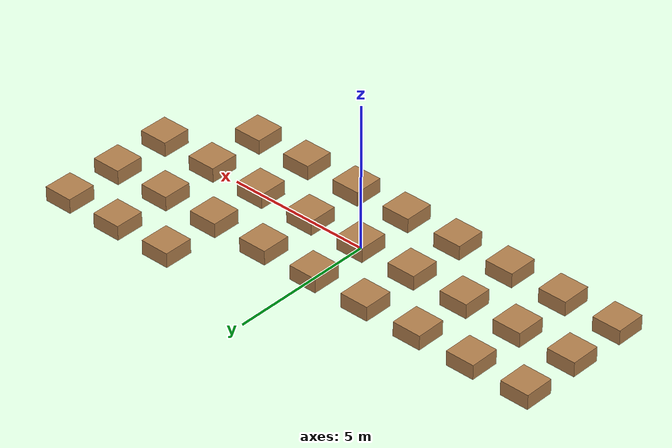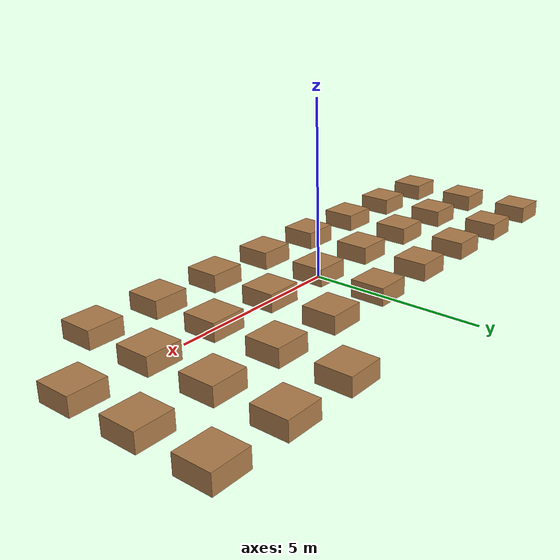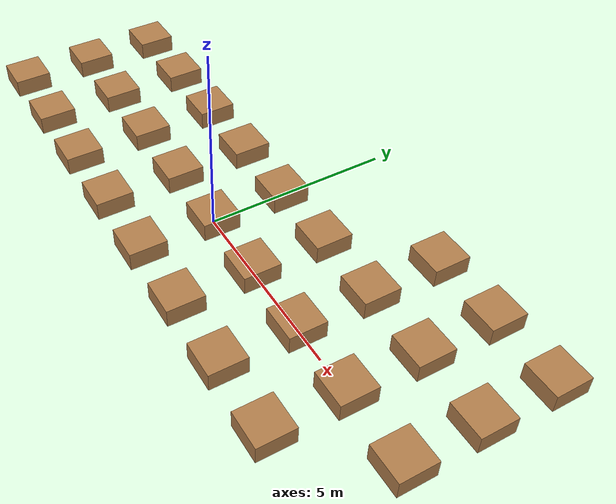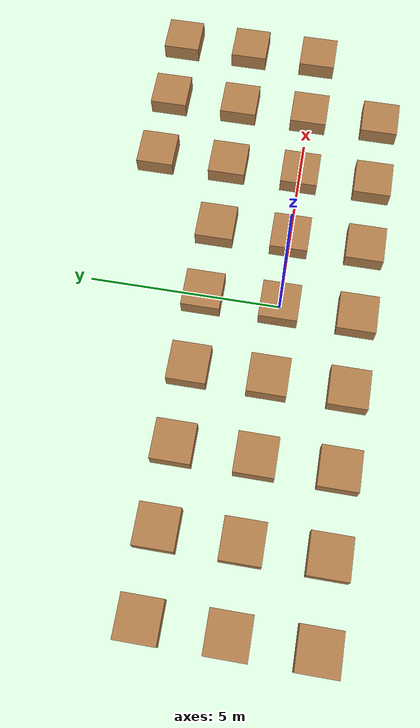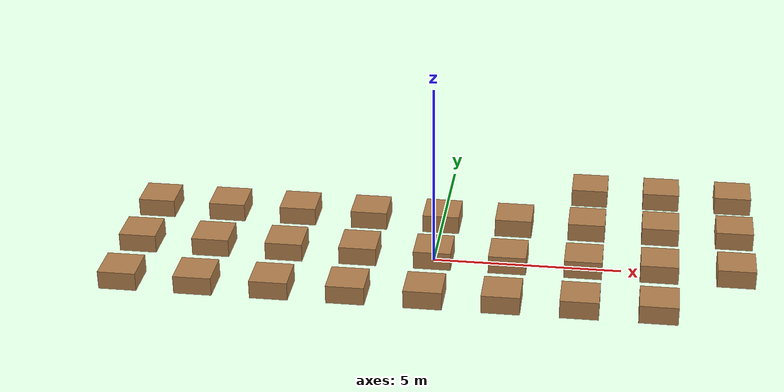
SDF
<sdf version="1.5">
 <model name="clobot_test_map">
  <static>1</static>
  <link name="Box25">
   <collision name="Box25_Collision">
    <pose>4 4 0.25 0 0 0</pose>
    <geometry><box><size>1 1 0.5</size></box></geometry>
    <surface>
     <friction>
      <ode><mu>1</mu><mu2>1</mu2><fdir1>0 0 0</fdir1><slip1>0</slip1><slip2>0</slip2></ode>
      <torsional>
       <coefficient>1</coefficient>
       <patch_radius>0</patch_radius>
       <surface_radius>0</surface_radius>
       <use_patch_radius>1</use_patch_radius>
       <ode><slip>0</slip></ode>
      </torsional>
     </friction>
     <bounce><restitution_coefficient>0</restitution_coefficient><threshold>1e+06</threshold></bounce>
     <contact>
      <collide_without_contact>0</collide_without_contact>
      <collide_without_contact_bitmask>1</collide_without_contact_bitmask>
      <collide_bitmask>1</collide_bitmask>
      <ode>
       <soft_cfm>0</soft_cfm>
       <soft_erp>0.2</soft_erp>
       <kp>1e+13</kp>
       <kd>1</kd>
       <max_vel>0.01</max_vel>
       <min_depth>0</min_depth>
      </ode>
      <bullet>
       <split_impulse>1</split_impulse>
       <split_impulse_penetration_threshold>-0.01</split_impulse_penetration_threshold>
       <soft_cfm>0</soft_cfm>
       <soft_erp>0.2</soft_erp>
       <kp>1e+13</kp>
       <kd>1</kd>
      </bullet>
     </contact>
    </surface>
   </collision>
   <visual name="Box25_Visual">
    <pose>4 4 0.25 0 0 0</pose>
    <geometry><box><size>1 1 0.5</size></box></geometry>
    <material><script><name>Gazebo/WoodFloor</name></script></material>
   </visual>
  </link>
  <link name="Box26">
   <collision name="Box26_Collision">
    <pose>6 4 0.25 0 0 0</pose>
    <geometry><box><size>1 1 0.5</size></box></geometry>
    <surface>
     <friction>
      <ode><mu>1</mu><mu2>1</mu2><fdir1>0 0 0</fdir1><slip1>0</slip1><slip2>0</slip2></ode>
      <torsional>
       <coefficient>1</coefficient>
       <patch_radius>0</patch_radius>
       <surface_radius>0</surface_radius>
       <use_patch_radius>1</use_patch_radius>
       <ode><slip>0</slip></ode>
      </torsional>
     </friction>
     <bounce><restitution_coefficient>0</restitution_coefficient><threshold>1e+06</threshold></bounce>
     <contact>
      <collide_without_contact>0</collide_without_contact>
      <collide_without_contact_bitmask>1</collide_without_contact_bitmask>
      <collide_bitmask>1</collide_bitmask>
      <ode>
       <soft_cfm>0</soft_cfm>
       <soft_erp>0.2</soft_erp>
       <kp>1e+13</kp>
       <kd>1</kd>
       <max_vel>0.01</max_vel>
       <min_depth>0</min_depth>
      </ode>
      <bullet>
       <split_impulse>1</split_impulse>
       <split_impulse_penetration_threshold>-0.01</split_impulse_penetration_threshold>
       <soft_cfm>0</soft_cfm>
       <soft_erp>0.2</soft_erp>
       <kp>1e+13</kp>
       <kd>1</kd>
      </bullet>
     </contact>
    </surface>
   </collision>
   <visual name="Box26_Visual">
    <pose>6 4 0.25 0 0 0</pose>
    <geometry><box><size>1 1 0.5</size></box></geometry>
    <material><script><name>Gazebo/WoodFloor</name></script></material>
   </visual>
  </link>
  <link name="Box27">
   <collision name="Box27_Collision">
    <pose>8 4 0.25 0 0 0</pose>
    <geometry><box><size>1 1 0.5</size></box></geometry>
    <surface>
     <friction>
      <ode><mu>1</mu><mu2>1</mu2><fdir1>0 0 0</fdir1><slip1>0</slip1><slip2>0</slip2></ode>
      <torsional>
       <coefficient>1</coefficient>
       <patch_radius>0</patch_radius>
       <surface_radius>0</surface_radius>
       <use_patch_radius>1</use_patch_radius>
       <ode><slip>0</slip></ode>
      </torsional>
     </friction>
     <bounce><restitution_coefficient>0</restitution_coefficient><threshold>1e+06</threshold></bounce>
     <contact>
      <collide_without_contact>0</collide_without_contact>
      <collide_without_contact_bitmask>1</collide_without_contact_bitmask>
      <collide_bitmask>1</collide_bitmask>
      <ode>
       <soft_cfm>0</soft_cfm>
       <soft_erp>0.2</soft_erp>
       <kp>1e+13</kp>
       <kd>1</kd>
       <max_vel>0.01</max_vel>
       <min_depth>0</min_depth>
      </ode>
      <bullet>
       <split_impulse>1</split_impulse>
       <split_impulse_penetration_threshold>-0.01</split_impulse_penetration_threshold>
       <soft_cfm>0</soft_cfm>
       <soft_erp>0.2</soft_erp>
       <kp>1e+13</kp>
       <kd>1</kd>
      </bullet>
     </contact>
    </surface>
   </collision>
   <visual name="Box27_Visual">
    <pose>8 4 0.25 0 0 0</pose>
    <geometry><box><size>1 1 0.5</size></box></geometry>
    <material><script><name>Gazebo/WoodFloor</name></script></material>
   </visual>
  </link>
  <link name="Box28">
   <collision name="Box28_Collision">
    <pose>-8 2 0.25 0 0 0</pose>
    <geometry><box><size>1 1 0.5</size></box></geometry>
    <surface>
     <friction>
      <ode><mu>1</mu><mu2>1</mu2><fdir1>0 0 0</fdir1><slip1>0</slip1><slip2>0</slip2></ode>
      <torsional>
       <coefficient>1</coefficient>
       <patch_radius>0</patch_radius>
       <surface_radius>0</surface_radius>
       <use_patch_radius>1</use_patch_radius>
       <ode><slip>0</slip></ode>
      </torsional>
     </friction>
     <bounce><restitution_coefficient>0</restitution_coefficient><threshold>1e+06</threshold></bounce>
     <contact>
      <collide_without_contact>0</collide_without_contact>
      <collide_without_contact_bitmask>1</collide_without_contact_bitmask>
      <collide_bitmask>1</collide_bitmask>
      <ode>
       <soft_cfm>0</soft_cfm>
       <soft_erp>0.2</soft_erp>
       <kp>1e+13</kp>
       <kd>1</kd>
       <max_vel>0.01</max_vel>
       <min_depth>0</min_depth>
      </ode>
      <bullet>
       <split_impulse>1</split_impulse>
       <split_impulse_penetration_threshold>-0.01</split_impulse_penetration_threshold>
       <soft_cfm>0</soft_cfm>
       <soft_erp>0.2</soft_erp>
       <kp>1e+13</kp>
       <kd>1</kd>
      </bullet>
     </contact>
    </surface>
   </collision>
   <visual name="Box28_Visual">
    <pose>-8 2 0.25 0 0 0</pose>
    <geometry><box><size>1 1 0.5</size></box></geometry>
    <material><script><name>Gazebo/WoodFloor</name></script></material>
   </visual>
  </link>
  <link name="Box29">
   <collision name="Box29_Collision">
    <pose>-6 2 0.25 0 0 0</pose>
    <geometry><box><size>1 1 0.5</size></box></geometry>
    <surface>
     <friction>
      <ode><mu>1</mu><mu2>1</mu2><fdir1>0 0 0</fdir1><slip1>0</slip1><slip2>0</slip2></ode>
      <torsional>
       <coefficient>1</coefficient>
       <patch_radius>0</patch_radius>
       <surface_radius>0</surface_radius>
       <use_patch_radius>1</use_patch_radius>
       <ode><slip>0</slip></ode>
      </torsional>
     </friction>
     <bounce><restitution_coefficient>0</restitution_coefficient><threshold>1e+06</threshold></bounce>
     <contact>
      <collide_without_contact>0</collide_without_contact>
      <collide_without_contact_bitmask>1</collide_without_contact_bitmask>
      <collide_bitmask>1</collide_bitmask>
      <ode>
       <soft_cfm>0</soft_cfm>
       <soft_erp>0.2</soft_erp>
       <kp>1e+13</kp>
       <kd>1</kd>
       <max_vel>0.01</max_vel>
       <min_depth>0</min_depth>
      </ode>
      <bullet>
       <split_impulse>1</split_impulse>
       <split_impulse_penetration_threshold>-0.01</split_impulse_penetration_threshold>
       <soft_cfm>0</soft_cfm>
       <soft_erp>0.2</soft_erp>
       <kp>1e+13</kp>
       <kd>1</kd>
      </bullet>
     </contact>
    </surface>
   </collision>
   <visual name="Box29_Visual">
    <pose>-6 2 0.25 0 0 0</pose>
    <geometry><box><size>1 1 0.5</size></box></geometry>
    <material><script><name>Gazebo/WoodFloor</name></script></material>
   </visual>
  </link>
  <link name="Box30">
   <collision name="Box30_Collision">
    <pose>-4 2 0.25 0 0 0</pose>
    <geometry><box><size>1 1 0.5</size></box></geometry>
    <surface>
     <friction>
      <ode><mu>1</mu><mu2>1</mu2><fdir1>0 0 0</fdir1><slip1>0</slip1><slip2>0</slip2></ode>
      <torsional>
       <coefficient>1</coefficient>
       <patch_radius>0</patch_radius>
       <surface_radius>0</surface_radius>
       <use_patch_radius>1</use_patch_radius>
       <ode><slip>0</slip></ode>
      </torsional>
     </friction>
     <bounce><restitution_coefficient>0</restitution_coefficient><threshold>1e+06</threshold></bounce>
     <contact>
      <collide_without_contact>0</collide_without_contact>
      <collide_without_contact_bitmask>1</collide_without_contact_bitmask>
      <collide_bitmask>1</collide_bitmask>
      <ode>
       <soft_cfm>0</soft_cfm>
       <soft_erp>0.2</soft_erp>
       <kp>1e+13</kp>
       <kd>1</kd>
       <max_vel>0.01</max_vel>
       <min_depth>0</min_depth>
      </ode>
      <bullet>
       <split_impulse>1</split_impulse>
       <split_impulse_penetration_threshold>-0.01</split_impulse_penetration_threshold>
       <soft_cfm>0</soft_cfm>
       <soft_erp>0.2</soft_erp>
       <kp>1e+13</kp>
       <kd>1</kd>
      </bullet>
     </contact>
    </surface>
   </collision>
   <visual name="Box30_Visual">
    <pose>-4 2 0.25 0 0 0</pose>
    <geometry><box><size>1 1 0.5</size></box></geometry>
    <material><script><name>Gazebo/WoodFloor</name></script></material>
   </visual>
  </link>
  <link name="Box31">
   <collision name="Box31_Collision">
    <pose>-2 2 0.25 0 0 0</pose>
    <geometry><box><size>1 1 0.5</size></box></geometry>
    <surface>
     <friction>
      <ode><mu>1</mu><mu2>1</mu2><fdir1>0 0 0</fdir1><slip1>0</slip1><slip2>0</slip2></ode>
      <torsional>
       <coefficient>1</coefficient>
       <patch_radius>0</patch_radius>
       <surface_radius>0</surface_radius>
       <use_patch_radius>1</use_patch_radius>
       <ode><slip>0</slip></ode>
      </torsional>
     </friction>
     <bounce><restitution_coefficient>0</restitution_coefficient><threshold>1e+06</threshold></bounce>
     <contact>
      <collide_without_contact>0</collide_without_contact>
      <collide_without_contact_bitmask>1</collide_without_contact_bitmask>
      <collide_bitmask>1</collide_bitmask>
      <ode>
       <soft_cfm>0</soft_cfm>
       <soft_erp>0.2</soft_erp>
       <kp>1e+13</kp>
       <kd>1</kd>
       <max_vel>0.01</max_vel>
       <min_depth>0</min_depth>
      </ode>
      <bullet>
       <split_impulse>1</split_impulse>
       <split_impulse_penetration_threshold>-0.01</split_impulse_penetration_threshold>
       <soft_cfm>0</soft_cfm>
       <soft_erp>0.2</soft_erp>
       <kp>1e+13</kp>
       <kd>1</kd>
      </bullet>
     </contact>
    </surface>
   </collision>
   <visual name="Box31_Visual">
    <pose>-2 2 0.25 0 0 0</pose>
    <geometry><box><size>1 1 0.5</size></box></geometry>
    <material><script><name>Gazebo/WoodFloor</name></script></material>
   </visual>
  </link>
  <link name="Box32">
   <collision name="Box32_Collision">
    <pose>0 2 0.25 0 0 0</pose>
    <geometry><box><size>1 1 0.5</size></box></geometry>
    <surface>
     <friction>
      <ode><mu>1</mu><mu2>1</mu2><fdir1>0 0 0</fdir1><slip1>0</slip1><slip2>0</slip2></ode>
      <torsional>
       <coefficient>1</coefficient>
       <patch_radius>0</patch_radius>
       <surface_radius>0</surface_radius>
       <use_patch_radius>1</use_patch_radius>
       <ode><slip>0</slip></ode>
      </torsional>
     </friction>
     <bounce><restitution_coefficient>0</restitution_coefficient><threshold>1e+06</threshold></bounce>
     <contact>
      <collide_without_contact>0</collide_without_contact>
      <collide_without_contact_bitmask>1</collide_without_contact_bitmask>
      <collide_bitmask>1</collide_bitmask>
      <ode>
       <soft_cfm>0</soft_cfm>
       <soft_erp>0.2</soft_erp>
       <kp>1e+13</kp>
       <kd>1</kd>
       <max_vel>0.01</max_vel>
       <min_depth>0</min_depth>
      </ode>
      <bullet>
       <split_impulse>1</split_impulse>
       <split_impulse_penetration_threshold>-0.01</split_impulse_penetration_threshold>
       <soft_cfm>0</soft_cfm>
       <soft_erp>0.2</soft_erp>
       <kp>1e+13</kp>
       <kd>1</kd>
      </bullet>
     </contact>
    </surface>
   </collision>
   <visual name="Box32_Visual">
    <pose>0 2 0.25 0 0 0</pose>
    <geometry><box><size>1 1 0.5</size></box></geometry>
    <material><script><name>Gazebo/WoodFloor</name></script></material>
   </visual>
  </link>
  <link name="Box33">
   <collision name="Box33_Collision">
    <pose>2 2 0.25 0 0 0</pose>
    <geometry><box><size>1 1 0.5</size></box></geometry>
    <surface>
     <friction>
      <ode><mu>1</mu><mu2>1</mu2><fdir1>0 0 0</fdir1><slip1>0</slip1><slip2>0</slip2></ode>
      <torsional>
       <coefficient>1</coefficient>
       <patch_radius>0</patch_radius>
       <surface_radius>0</surface_radius>
       <use_patch_radius>1</use_patch_radius>
       <ode><slip>0</slip></ode>
      </torsional>
     </friction>
     <bounce><restitution_coefficient>0</restitution_coefficient><threshold>1e+06</threshold></bounce>
     <contact>
      <collide_without_contact>0</collide_without_contact>
      <collide_without_contact_bitmask>1</collide_without_contact_bitmask>
      <collide_bitmask>1</collide_bitmask>
      <ode>
       <soft_cfm>0</soft_cfm>
       <soft_erp>0.2</soft_erp>
       <kp>1e+13</kp>
       <kd>1</kd>
       <max_vel>0.01</max_vel>
       <min_depth>0</min_depth>
      </ode>
      <bullet>
       <split_impulse>1</split_impulse>
       <split_impulse_penetration_threshold>-0.01</split_impulse_penetration_threshold>
       <soft_cfm>0</soft_cfm>
       <soft_erp>0.2</soft_erp>
       <kp>1e+13</kp>
       <kd>1</kd>
      </bullet>
     </contact>
    </surface>
   </collision>
   <visual name="Box33_Visual">
    <pose>2 2 0.25 0 0 0</pose>
    <geometry><box><size>1 1 0.5</size></box></geometry>
    <material><script><name>Gazebo/WoodFloor</name></script></material>
   </visual>
  </link>
  <link name="Box34">
   <collision name="Box34_Collision">
    <pose>4 2 0.25 0 0 0</pose>
    <geometry><box><size>1 1 0.5</size></box></geometry>
    <surface>
     <friction>
      <ode><mu>1</mu><mu2>1</mu2><fdir1>0 0 0</fdir1><slip1>0</slip1><slip2>0</slip2></ode>
      <torsional>
       <coefficient>1</coefficient>
       <patch_radius>0</patch_radius>
       <surface_radius>0</surface_radius>
       <use_patch_radius>1</use_patch_radius>
       <ode><slip>0</slip></ode>
      </torsional>
     </friction>
     <bounce><restitution_coefficient>0</restitution_coefficient><threshold>1e+06</threshold></bounce>
     <contact>
      <collide_without_contact>0</collide_without_contact>
      <collide_without_contact_bitmask>1</collide_without_contact_bitmask>
      <collide_bitmask>1</collide_bitmask>
      <ode>
       <soft_cfm>0</soft_cfm>
       <soft_erp>0.2</soft_erp>
       <kp>1e+13</kp>
       <kd>1</kd>
       <max_vel>0.01</max_vel>
       <min_depth>0</min_depth>
      </ode>
      <bullet>
       <split_impulse>1</split_impulse>
       <split_impulse_penetration_threshold>-0.01</split_impulse_penetration_threshold>
       <soft_cfm>0</soft_cfm>
       <soft_erp>0.2</soft_erp>
       <kp>1e+13</kp>
       <kd>1</kd>
      </bullet>
     </contact>
    </surface>
   </collision>
   <visual name="Box34_Visual">
    <pose>4 2 0.25 0 0 0</pose>
    <geometry><box><size>1 1 0.5</size></box></geometry>
    <material><script><name>Gazebo/WoodFloor</name></script></material>
   </visual>
  </link>
  <link name="Box35">
   <collision name="Box35_Collision">
    <pose>6 2 0.25 0 0 0</pose>
    <geometry><box><size>1 1 0.5</size></box></geometry>
    <surface>
     <friction>
      <ode><mu>1</mu><mu2>1</mu2><fdir1>0 0 0</fdir1><slip1>0</slip1><slip2>0</slip2></ode>
      <torsional>
       <coefficient>1</coefficient>
       <patch_radius>0</patch_radius>
       <surface_radius>0</surface_radius>
       <use_patch_radius>1</use_patch_radius>
       <ode><slip>0</slip></ode>
      </torsional>
     </friction>
     <bounce><restitution_coefficient>0</restitution_coefficient><threshold>1e+06</threshold></bounce>
     <contact>
      <collide_without_contact>0</collide_without_contact>
      <collide_without_contact_bitmask>1</collide_without_contact_bitmask>
      <collide_bitmask>1</collide_bitmask>
      <ode>
       <soft_cfm>0</soft_cfm>
       <soft_erp>0.2</soft_erp>
       <kp>1e+13</kp>
       <kd>1</kd>
       <max_vel>0.01</max_vel>
       <min_depth>0</min_depth>
      </ode>
      <bullet>
       <split_impulse>1</split_impulse>
       <split_impulse_penetration_threshold>-0.01</split_impulse_penetration_threshold>
       <soft_cfm>0</soft_cfm>
       <soft_erp>0.2</soft_erp>
       <kp>1e+13</kp>
       <kd>1</kd>
      </bullet>
     </contact>
    </surface>
   </collision>
   <visual name="Box35_Visual">
    <pose>6 2 0.25 0 0 0</pose>
    <geometry><box><size>1 1 0.5</size></box></geometry>
    <material><script><name>Gazebo/WoodFloor</name></script></material>
   </visual>
  </link>
  <link name="Box36">
   <collision name="Box36_Collision">
    <pose>8 2 0.25 0 0 0</pose>
    <geometry><box><size>1 1 0.5</size></box></geometry>
    <surface>
     <friction>
      <ode><mu>1</mu><mu2>1</mu2><fdir1>0 0 0</fdir1><slip1>0</slip1><slip2>0</slip2></ode>
      <torsional>
       <coefficient>1</coefficient>
       <patch_radius>0</patch_radius>
       <surface_radius>0</surface_radius>
       <use_patch_radius>1</use_patch_radius>
       <ode><slip>0</slip></ode>
      </torsional>
     </friction>
     <bounce><restitution_coefficient>0</restitution_coefficient><threshold>1e+06</threshold></bounce>
     <contact>
      <collide_without_contact>0</collide_without_contact>
      <collide_without_contact_bitmask>1</collide_without_contact_bitmask>
      <collide_bitmask>1</collide_bitmask>
      <ode>
       <soft_cfm>0</soft_cfm>
       <soft_erp>0.2</soft_erp>
       <kp>1e+13</kp>
       <kd>1</kd>
       <max_vel>0.01</max_vel>
       <min_depth>0</min_depth>
      </ode>
      <bullet>
       <split_impulse>1</split_impulse>
       <split_impulse_penetration_threshold>-0.01</split_impulse_penetration_threshold>
       <soft_cfm>0</soft_cfm>
       <soft_erp>0.2</soft_erp>
       <kp>1e+13</kp>
       <kd>1</kd>
      </bullet>
     </contact>
    </surface>
   </collision>
   <visual name="Box36_Visual">
    <pose>8 2 0.25 0 0 0</pose>
    <geometry><box><size>1 1 0.5</size></box></geometry>
    <material><script><name>Gazebo/WoodFloor</name></script></material>
   </visual>
  </link>
  <link name="Box37">
   <collision name="Box37_Collision">
    <pose>-8 0 0.25 0 0 0</pose>
    <geometry><box><size>1 1 0.5</size></box></geometry>
    <surface>
     <friction>
      <ode><mu>1</mu><mu2>1</mu2><fdir1>0 0 0</fdir1><slip1>0</slip1><slip2>0</slip2></ode>
      <torsional>
       <coefficient>1</coefficient>
       <patch_radius>0</patch_radius>
       <surface_radius>0</surface_radius>
       <use_patch_radius>1</use_patch_radius>
       <ode><slip>0</slip></ode>
      </torsional>
     </friction>
     <bounce><restitution_coefficient>0</restitution_coefficient><threshold>1e+06</threshold></bounce>
     <contact>
      <collide_without_contact>0</collide_without_contact>
      <collide_without_contact_bitmask>1</collide_without_contact_bitmask>
      <collide_bitmask>1</collide_bitmask>
      <ode>
       <soft_cfm>0</soft_cfm>
       <soft_erp>0.2</soft_erp>
       <kp>1e+13</kp>
       <kd>1</kd>
       <max_vel>0.01</max_vel>
       <min_depth>0</min_depth>
      </ode>
      <bullet>
       <split_impulse>1</split_impulse>
       <split_impulse_penetration_threshold>-0.01</split_impulse_penetration_threshold>
       <soft_cfm>0</soft_cfm>
       <soft_erp>0.2</soft_erp>
       <kp>1e+13</kp>
       <kd>1</kd>
      </bullet>
     </contact>
    </surface>
   </collision>
   <visual name="Box37_Visual">
    <pose>-8 0 0.25 0 0 0</pose>
    <geometry><box><size>1 1 0.5</size></box></geometry>
    <material><script><name>Gazebo/WoodFloor</name></script></material>
   </visual>
  </link>
  <link name="Box38">
   <collision name="Box38_Collision">
    <pose>-6 0 0.25 0 0 0</pose>
    <geometry><box><size>1 1 0.5</size></box></geometry>
    <surface>
     <friction>
      <ode><mu>1</mu><mu2>1</mu2><fdir1>0 0 0</fdir1><slip1>0</slip1><slip2>0</slip2></ode>
      <torsional>
       <coefficient>1</coefficient>
       <patch_radius>0</patch_radius>
       <surface_radius>0</surface_radius>
       <use_patch_radius>1</use_patch_radius>
       <ode><slip>0</slip></ode>
      </torsional>
     </friction>
     <bounce><restitution_coefficient>0</restitution_coefficient><threshold>1e+06</threshold></bounce>
     <contact>
      <collide_without_contact>0</collide_without_contact>
      <collide_without_contact_bitmask>1</collide_without_contact_bitmask>
      <collide_bitmask>1</collide_bitmask>
      <ode>
       <soft_cfm>0</soft_cfm>
       <soft_erp>0.2</soft_erp>
       <kp>1e+13</kp>
       <kd>1</kd>
       <max_vel>0.01</max_vel>
       <min_depth>0</min_depth>
      </ode>
      <bullet>
       <split_impulse>1</split_impulse>
       <split_impulse_penetration_threshold>-0.01</split_impulse_penetration_threshold>
       <soft_cfm>0</soft_cfm>
       <soft_erp>0.2</soft_erp>
       <kp>1e+13</kp>
       <kd>1</kd>
      </bullet>
     </contact>
    </surface>
   </collision>
   <visual name="Box38_Visual">
    <pose>-6 0 0.25 0 0 0</pose>
    <geometry><box><size>1 1 0.5</size></box></geometry>
    <material><script><name>Gazebo/WoodFloor</name></script></material>
   </visual>
  </link>
  <link name="Box39">
   <collision name="Box39_Collision">
    <pose>-4 0 0.25 0 0 0</pose>
    <geometry><box><size>1 1 0.5</size></box></geometry>
    <surface>
     <friction>
      <ode><mu>1</mu><mu2>1</mu2><fdir1>0 0 0</fdir1><slip1>0</slip1><slip2>0</slip2></ode>
      <torsional>
       <coefficient>1</coefficient>
       <patch_radius>0</patch_radius>
       <surface_radius>0</surface_radius>
       <use_patch_radius>1</use_patch_radius>
       <ode><slip>0</slip></ode>
      </torsional>
     </friction>
     <bounce><restitution_coefficient>0</restitution_coefficient><threshold>1e+06</threshold></bounce>
     <contact>
      <collide_without_contact>0</collide_without_contact>
      <collide_without_contact_bitmask>1</collide_without_contact_bitmask>
      <collide_bitmask>1</collide_bitmask>
      <ode>
       <soft_cfm>0</soft_cfm>
       <soft_erp>0.2</soft_erp>
       <kp>1e+13</kp>
       <kd>1</kd>
       <max_vel>0.01</max_vel>
       <min_depth>0</min_depth>
      </ode>
      <bullet>
       <split_impulse>1</split_impulse>
       <split_impulse_penetration_threshold>-0.01</split_impulse_penetration_threshold>
       <soft_cfm>0</soft_cfm>
       <soft_erp>0.2</soft_erp>
       <kp>1e+13</kp>
       <kd>1</kd>
      </bullet>
     </contact>
    </surface>
   </collision>
   <visual name="Box39_Visual">
    <pose>-4 0 0.25 0 0 0</pose>
    <geometry><box><size>1 1 0.5</size></box></geometry>
    <material><script><name>Gazebo/WoodFloor</name></script></material>
   </visual>
  </link>
  <link name="Box40">
   <collision name="Box40_Collision">
    <pose>-2 0 0.25 0 0 0</pose>
    <geometry><box><size>1 1 0.5</size></box></geometry>
    <surface>
     <friction>
      <ode><mu>1</mu><mu2>1</mu2><fdir1>0 0 0</fdir1><slip1>0</slip1><slip2>0</slip2></ode>
      <torsional>
       <coefficient>1</coefficient>
       <patch_radius>0</patch_radius>
       <surface_radius>0</surface_radius>
       <use_patch_radius>1</use_patch_radius>
       <ode><slip>0</slip></ode>
      </torsional>
     </friction>
     <bounce><restitution_coefficient>0</restitution_coefficient><threshold>1e+06</threshold></bounce>
     <contact>
      <collide_without_contact>0</collide_without_contact>
      <collide_without_contact_bitmask>1</collide_without_contact_bitmask>
      <collide_bitmask>1</collide_bitmask>
      <ode>
       <soft_cfm>0</soft_cfm>
       <soft_erp>0.2</soft_erp>
       <kp>1e+13</kp>
       <kd>1</kd>
       <max_vel>0.01</max_vel>
       <min_depth>0</min_depth>
      </ode>
      <bullet>
       <split_impulse>1</split_impulse>
       <split_impulse_penetration_threshold>-0.01</split_impulse_penetration_threshold>
       <soft_cfm>0</soft_cfm>
       <soft_erp>0.2</soft_erp>
       <kp>1e+13</kp>
       <kd>1</kd>
      </bullet>
     </contact>
    </surface>
   </collision>
   <visual name="Box40_Visual">
    <pose>-2 0 0.25 0 0 0</pose>
    <geometry><box><size>1 1 0.5</size></box></geometry>
    <material><script><name>Gazebo/WoodFloor</name></script></material>
   </visual>
  </link>
  <link name="Box41">
   <collision name="Box41_Collision">
    <pose>0 0 0.25 0 0 0</pose>
    <geometry><box><size>1 1 0.5</size></box></geometry>
    <surface>
     <friction>
      <ode><mu>1</mu><mu2>1</mu2><fdir1>0 0 0</fdir1><slip1>0</slip1><slip2>0</slip2></ode>
      <torsional>
       <coefficient>1</coefficient>
       <patch_radius>0</patch_radius>
       <surface_radius>0</surface_radius>
       <use_patch_radius>1</use_patch_radius>
       <ode><slip>0</slip></ode>
      </torsional>
     </friction>
     <bounce><restitution_coefficient>0</restitution_coefficient><threshold>1e+06</threshold></bounce>
     <contact>
      <collide_without_contact>0</collide_without_contact>
      <collide_without_contact_bitmask>1</collide_without_contact_bitmask>
      <collide_bitmask>1</collide_bitmask>
      <ode>
       <soft_cfm>0</soft_cfm>
       <soft_erp>0.2</soft_erp>
       <kp>1e+13</kp>
       <kd>1</kd>
       <max_vel>0.01</max_vel>
       <min_depth>0</min_depth>
      </ode>
      <bullet>
       <split_impulse>1</split_impulse>
       <split_impulse_penetration_threshold>-0.01</split_impulse_penetration_threshold>
       <soft_cfm>0</soft_cfm>
       <soft_erp>0.2</soft_erp>
       <kp>1e+13</kp>
       <kd>1</kd>
      </bullet>
     </contact>
    </surface>
   </collision>
   <visual name="Box41_Visual">
    <pose>0 0 0.25 0 0 0</pose>
    <geometry><box><size>1 1 0.5</size></box></geometry>
    <material><script><name>Gazebo/WoodFloor</name></script></material>
   </visual>
  </link>
  <link name="Box42">
   <collision name="Box42_Collision">
    <pose>2 0 0.25 0 0 0</pose>
    <geometry><box><size>1 1 0.5</size></box></geometry>
    <surface>
     <friction>
      <ode><mu>1</mu><mu2>1</mu2><fdir1>0 0 0</fdir1><slip1>0</slip1><slip2>0</slip2></ode>
      <torsional>
       <coefficient>1</coefficient>
       <patch_radius>0</patch_radius>
       <surface_radius>0</surface_radius>
       <use_patch_radius>1</use_patch_radius>
       <ode><slip>0</slip></ode>
      </torsional>
     </friction>
     <bounce><restitution_coefficient>0</restitution_coefficient><threshold>1e+06</threshold></bounce>
     <contact>
      <collide_without_contact>0</collide_without_contact>
      <collide_without_contact_bitmask>1</collide_without_contact_bitmask>
      <collide_bitmask>1</collide_bitmask>
      <ode>
       <soft_cfm>0</soft_cfm>
       <soft_erp>0.2</soft_erp>
       <kp>1e+13</kp>
       <kd>1</kd>
       <max_vel>0.01</max_vel>
       <min_depth>0</min_depth>
      </ode>
      <bullet>
       <split_impulse>1</split_impulse>
       <split_impulse_penetration_threshold>-0.01</split_impulse_penetration_threshold>
       <soft_cfm>0</soft_cfm>
       <soft_erp>0.2</soft_erp>
       <kp>1e+13</kp>
       <kd>1</kd>
      </bullet>
     </contact>
    </surface>
   </collision>
   <visual name="Box42_Visual">
    <pose>2 0 0.25 0 0 0</pose>
    <geometry><box><size>1 1 0.5</size></box></geometry>
    <material><script><name>Gazebo/WoodFloor</name></script></material>
   </visual>
  </link>
  <link name="Box43">
   <collision name="Box43_Collision">
    <pose>4 0 0.25 0 0 0</pose>
    <geometry><box><size>1 1 0.5</size></box></geometry>
    <surface>
     <friction>
      <ode><mu>1</mu><mu2>1</mu2><fdir1>0 0 0</fdir1><slip1>0</slip1><slip2>0</slip2></ode>
      <torsional>
       <coefficient>1</coefficient>
       <patch_radius>0</patch_radius>
       <surface_radius>0</surface_radius>
       <use_patch_radius>1</use_patch_radius>
       <ode><slip>0</slip></ode>
      </torsional>
     </friction>
     <bounce><restitution_coefficient>0</restitution_coefficient><threshold>1e+06</threshold></bounce>
     <contact>
      <collide_without_contact>0</collide_without_contact>
      <collide_without_contact_bitmask>1</collide_without_contact_bitmask>
      <collide_bitmask>1</collide_bitmask>
      <ode>
       <soft_cfm>0</soft_cfm>
       <soft_erp>0.2</soft_erp>
       <kp>1e+13</kp>
       <kd>1</kd>
       <max_vel>0.01</max_vel>
       <min_depth>0</min_depth>
      </ode>
      <bullet>
       <split_impulse>1</split_impulse>
       <split_impulse_penetration_threshold>-0.01</split_impulse_penetration_threshold>
       <soft_cfm>0</soft_cfm>
       <soft_erp>0.2</soft_erp>
       <kp>1e+13</kp>
       <kd>1</kd>
      </bullet>
     </contact>
    </surface>
   </collision>
   <visual name="Box43_Visual">
    <pose>4 0 0.25 0 0 0</pose>
    <geometry><box><size>1 1 0.5</size></box></geometry>
    <material><script><name>Gazebo/WoodFloor</name></script></material>
   </visual>
  </link>
  <link name="Box44">
   <collision name="Box44_Collision">
    <pose>6 0 0.25 0 0 0</pose>
    <geometry><box><size>1 1 0.5</size></box></geometry>
    <surface>
     <friction>
      <ode><mu>1</mu><mu2>1</mu2><fdir1>0 0 0</fdir1><slip1>0</slip1><slip2>0</slip2></ode>
      <torsional>
       <coefficient>1</coefficient>
       <patch_radius>0</patch_radius>
       <surface_radius>0</surface_radius>
       <use_patch_radius>1</use_patch_radius>
       <ode><slip>0</slip></ode>
      </torsional>
     </friction>
     <bounce><restitution_coefficient>0</restitution_coefficient><threshold>1e+06</threshold></bounce>
     <contact>
      <collide_without_contact>0</collide_without_contact>
      <collide_without_contact_bitmask>1</collide_without_contact_bitmask>
      <collide_bitmask>1</collide_bitmask>
      <ode>
       <soft_cfm>0</soft_cfm>
       <soft_erp>0.2</soft_erp>
       <kp>1e+13</kp>
       <kd>1</kd>
       <max_vel>0.01</max_vel>
       <min_depth>0</min_depth>
      </ode>
      <bullet>
       <split_impulse>1</split_impulse>
       <split_impulse_penetration_threshold>-0.01</split_impulse_penetration_threshold>
       <soft_cfm>0</soft_cfm>
       <soft_erp>0.2</soft_erp>
       <kp>1e+13</kp>
       <kd>1</kd>
      </bullet>
     </contact>
    </surface>
   </collision>
   <visual name="Box44_Visual">
    <pose>6 0 0.25 0 0 0</pose>
    <geometry><box><size>1 1 0.5</size></box></geometry>
    <material><script><name>Gazebo/WoodFloor</name></script></material>
   </visual>
  </link>
  <link name="Box45">
   <collision name="Box45_Collision">
    <pose>8 0 0.25 0 0 0</pose>
    <geometry><box><size>1 1 0.5</size></box></geometry>
    <surface>
     <friction>
      <ode><mu>1</mu><mu2>1</mu2><fdir1>0 0 0</fdir1><slip1>0</slip1><slip2>0</slip2></ode>
      <torsional>
       <coefficient>1</coefficient>
       <patch_radius>0</patch_radius>
       <surface_radius>0</surface_radius>
       <use_patch_radius>1</use_patch_radius>
       <ode><slip>0</slip></ode>
      </torsional>
     </friction>
     <bounce><restitution_coefficient>0</restitution_coefficient><threshold>1e+06</threshold></bounce>
     <contact>
      <collide_without_contact>0</collide_without_contact>
      <collide_without_contact_bitmask>1</collide_without_contact_bitmask>
      <collide_bitmask>1</collide_bitmask>
      <ode>
       <soft_cfm>0</soft_cfm>
       <soft_erp>0.2</soft_erp>
       <kp>1e+13</kp>
       <kd>1</kd>
       <max_vel>0.01</max_vel>
       <min_depth>0</min_depth>
      </ode>
      <bullet>
       <split_impulse>1</split_impulse>
       <split_impulse_penetration_threshold>-0.01</split_impulse_penetration_threshold>
       <soft_cfm>0</soft_cfm>
       <soft_erp>0.2</soft_erp>
       <kp>1e+13</kp>
       <kd>1</kd>
      </bullet>
     </contact>
    </surface>
   </collision>
   <visual name="Box45_Visual">
    <pose>8 0 0.25 0 0 0</pose>
    <geometry><box><size>1 1 0.5</size></box></geometry>
    <material><script><name>Gazebo/WoodFloor</name></script></material>
   </visual>
  </link>
  <link name="Box46">
   <collision name="Box46_Collision">
    <pose>-8 -2 0.25 0 0 0</pose>
    <geometry><box><size>1 1 0.5</size></box></geometry>
    <surface>
     <friction>
      <ode><mu>1</mu><mu2>1</mu2><fdir1>0 0 0</fdir1><slip1>0</slip1><slip2>0</slip2></ode>
      <torsional>
       <coefficient>1</coefficient>
       <patch_radius>0</patch_radius>
       <surface_radius>0</surface_radius>
       <use_patch_radius>1</use_patch_radius>
       <ode><slip>0</slip></ode>
      </torsional>
     </friction>
     <bounce><restitution_coefficient>0</restitution_coefficient><threshold>1e+06</threshold></bounce>
     <contact>
      <collide_without_contact>0</collide_without_contact>
      <collide_without_contact_bitmask>1</collide_without_contact_bitmask>
      <collide_bitmask>1</collide_bitmask>
      <ode>
       <soft_cfm>0</soft_cfm>
       <soft_erp>0.2</soft_erp>
       <kp>1e+13</kp>
       <kd>1</kd>
       <max_vel>0.01</max_vel>
       <min_depth>0</min_depth>
      </ode>
      <bullet>
       <split_impulse>1</split_impulse>
       <split_impulse_penetration_threshold>-0.01</split_impulse_penetration_threshold>
       <soft_cfm>0</soft_cfm>
       <soft_erp>0.2</soft_erp>
       <kp>1e+13</kp>
       <kd>1</kd>
      </bullet>
     </contact>
    </surface>
   </collision>
   <visual name="Box46_Visual">
    <pose>-8 -2 0.25 0 0 0</pose>
    <geometry><box><size>1 1 0.5</size></box></geometry>
    <material><script><name>Gazebo/WoodFloor</name></script></material>
   </visual>
  </link>
  <link name="Box47">
   <collision name="Box47_Collision">
    <pose>-6 -2 0.25 0 0 0</pose>
    <geometry><box><size>1 1 0.5</size></box></geometry>
    <surface>
     <friction>
      <ode><mu>1</mu><mu2>1</mu2><fdir1>0 0 0</fdir1><slip1>0</slip1><slip2>0</slip2></ode>
      <torsional>
       <coefficient>1</coefficient>
       <patch_radius>0</patch_radius>
       <surface_radius>0</surface_radius>
       <use_patch_radius>1</use_patch_radius>
       <ode><slip>0</slip></ode>
      </torsional>
     </friction>
     <bounce><restitution_coefficient>0</restitution_coefficient><threshold>1e+06</threshold></bounce>
     <contact>
      <collide_without_contact>0</collide_without_contact>
      <collide_without_contact_bitmask>1</collide_without_contact_bitmask>
      <collide_bitmask>1</collide_bitmask>
      <ode>
       <soft_cfm>0</soft_cfm>
       <soft_erp>0.2</soft_erp>
       <kp>1e+13</kp>
       <kd>1</kd>
       <max_vel>0.01</max_vel>
       <min_depth>0</min_depth>
      </ode>
      <bullet>
       <split_impulse>1</split_impulse>
       <split_impulse_penetration_threshold>-0.01</split_impulse_penetration_threshold>
       <soft_cfm>0</soft_cfm>
       <soft_erp>0.2</soft_erp>
       <kp>1e+13</kp>
       <kd>1</kd>
      </bullet>
     </contact>
    </surface>
   </collision>
   <visual name="Box47_Visual">
    <pose>-6 -2 0.25 0 0 0</pose>
    <geometry><box><size>1 1 0.5</size></box></geometry>
    <material><script><name>Gazebo/WoodFloor</name></script></material>
   </visual>
  </link>
  <link name="Box48">
   <collision name="Box48_Collision">
    <pose>-4 -2 0.25 0 0 0</pose>
    <geometry><box><size>1 1 0.5</size></box></geometry>
    <surface>
     <friction>
      <ode><mu>1</mu><mu2>1</mu2><fdir1>0 0 0</fdir1><slip1>0</slip1><slip2>0</slip2></ode>
      <torsional>
       <coefficient>1</coefficient>
       <patch_radius>0</patch_radius>
       <surface_radius>0</surface_radius>
       <use_patch_radius>1</use_patch_radius>
       <ode><slip>0</slip></ode>
      </torsional>
     </friction>
     <bounce><restitution_coefficient>0</restitution_coefficient><threshold>1e+06</threshold></bounce>
     <contact>
      <collide_without_contact>0</collide_without_contact>
      <collide_without_contact_bitmask>1</collide_without_contact_bitmask>
      <collide_bitmask>1</collide_bitmask>
      <ode>
       <soft_cfm>0</soft_cfm>
       <soft_erp>0.2</soft_erp>
       <kp>1e+13</kp>
       <kd>1</kd>
       <max_vel>0.01</max_vel>
       <min_depth>0</min_depth>
      </ode>
      <bullet>
       <split_impulse>1</split_impulse>
       <split_impulse_penetration_threshold>-0.01</split_impulse_penetration_threshold>
       <soft_cfm>0</soft_cfm>
       <soft_erp>0.2</soft_erp>
       <kp>1e+13</kp>
       <kd>1</kd>
      </bullet>
     </contact>
    </surface>
   </collision>
   <visual name="Box48_Visual">
    <pose>-4 -2 0.25 0 0 0</pose>
    <geometry><box><size>1 1 0.5</size></box></geometry>
    <material><script><name>Gazebo/WoodFloor</name></script></material>
   </visual>
  </link>
  <link name="Box49">
   <collision name="Box49_Collision">
    <pose>-2 -2 0.25 0 0 0</pose>
    <geometry><box><size>1 1 0.5</size></box></geometry>
    <surface>
     <friction>
      <ode><mu>1</mu><mu2>1</mu2><fdir1>0 0 0</fdir1><slip1>0</slip1><slip2>0</slip2></ode>
      <torsional>
       <coefficient>1</coefficient>
       <patch_radius>0</patch_radius>
       <surface_radius>0</surface_radius>
       <use_patch_radius>1</use_patch_radius>
       <ode><slip>0</slip></ode>
      </torsional>
     </friction>
     <bounce><restitution_coefficient>0</restitution_coefficient><threshold>1e+06</threshold></bounce>
     <contact>
      <collide_without_contact>0</collide_without_contact>
      <collide_without_contact_bitmask>1</collide_without_contact_bitmask>
      <collide_bitmask>1</collide_bitmask>
      <ode>
       <soft_cfm>0</soft_cfm>
       <soft_erp>0.2</soft_erp>
       <kp>1e+13</kp>
       <kd>1</kd>
       <max_vel>0.01</max_vel>
       <min_depth>0</min_depth>
      </ode>
      <bullet>
       <split_impulse>1</split_impulse>
       <split_impulse_penetration_threshold>-0.01</split_impulse_penetration_threshold>
       <soft_cfm>0</soft_cfm>
       <soft_erp>0.2</soft_erp>
       <kp>1e+13</kp>
       <kd>1</kd>
      </bullet>
     </contact>
    </surface>
   </collision>
   <visual name="Box49Visual">
    <pose>-2 -2 0.25 0 0 0</pose>
    <geometry><box><size>1 1 0.5</size></box></geometry>
    <material><script><name>Gazebo/WoodFloor</name></script></material>
   </visual>
  </link>
  <link name="Box50">
   <collision name="Box50_Collision">
    <pose>0 -2 0.25 0 0 0</pose>
    <geometry><box><size>1 1 0.5</size></box></geometry>
    <surface>
     <friction>
      <ode><mu>1</mu><mu2>1</mu2><fdir1>0 0 0</fdir1><slip1>0</slip1><slip2>0</slip2></ode>
      <torsional>
       <coefficient>1</coefficient>
       <patch_radius>0</patch_radius>
       <surface_radius>0</surface_radius>
       <use_patch_radius>1</use_patch_radius>
       <ode><slip>0</slip></ode>
      </torsional>
     </friction>
     <bounce><restitution_coefficient>0</restitution_coefficient><threshold>1e+06</threshold></bounce>
     <contact>
      <collide_without_contact>0</collide_without_contact>
      <collide_without_contact_bitmask>1</collide_without_contact_bitmask>
      <collide_bitmask>1</collide_bitmask>
      <ode>
       <soft_cfm>0</soft_cfm>
       <soft_erp>0.2</soft_erp>
       <kp>1e+13</kp>
       <kd>1</kd>
       <max_vel>0.01</max_vel>
       <min_depth>0</min_depth>
      </ode>
      <bullet>
       <split_impulse>1</split_impulse>
       <split_impulse_penetration_threshold>-0.01</split_impulse_penetration_threshold>
       <soft_cfm>0</soft_cfm>
       <soft_erp>0.2</soft_erp>
       <kp>1e+13</kp>
       <kd>1</kd>
      </bullet>
     </contact>
    </surface>
   </collision>
   <visual name="Box50_Visual">
    <pose>0 -2 0.25 0 0 0</pose>
    <geometry><box><size>1 1 0.5</size></box></geometry>
    <material><script><name>Gazebo/WoodFloor</name></script></material>
   </visual>
  </link>
  <link name="Box51">
   <collision name="Box51_Collision">
    <pose>2 -2 0.25 0 0 0</pose>
    <geometry><box><size>1 1 0.5</size></box></geometry>
    <surface>
     <friction>
      <ode><mu>1</mu><mu2>1</mu2><fdir1>0 0 0</fdir1><slip1>0</slip1><slip2>0</slip2></ode>
      <torsional>
       <coefficient>1</coefficient>
       <patch_radius>0</patch_radius>
       <surface_radius>0</surface_radius>
       <use_patch_radius>1</use_patch_radius>
       <ode><slip>0</slip></ode>
      </torsional>
     </friction>
     <bounce><restitution_coefficient>0</restitution_coefficient><threshold>1e+06</threshold></bounce>
     <contact>
      <collide_without_contact>0</collide_without_contact>
      <collide_without_contact_bitmask>1</collide_without_contact_bitmask>
      <collide_bitmask>1</collide_bitmask>
      <ode>
       <soft_cfm>0</soft_cfm>
       <soft_erp>0.2</soft_erp>
       <kp>1e+13</kp>
       <kd>1</kd>
       <max_vel>0.01</max_vel>
       <min_depth>0</min_depth>
      </ode>
      <bullet>
       <split_impulse>1</split_impulse>
       <split_impulse_penetration_threshold>-0.01</split_impulse_penetration_threshold>
       <soft_cfm>0</soft_cfm>
       <soft_erp>0.2</soft_erp>
       <kp>1e+13</kp>
       <kd>1</kd>
      </bullet>
     </contact>
    </surface>
   </collision>
   <visual name="Box51_Visual">
    <pose>2 -2 0.25 0 0 0</pose>
    <geometry><box><size>1 1 0.5</size></box></geometry>
    <material><script><name>Gazebo/WoodFloor</name></script></material>
   </visual>
  </link>
  <link name="Box52">
   <collision name="Box52_Collision">
    <pose>4 -2 0.25 0 0 0</pose>
    <geometry><box><size>1 1 0.5</size></box></geometry>
    <surface>
     <friction>
      <ode><mu>1</mu><mu2>1</mu2><fdir1>0 0 0</fdir1><slip1>0</slip1><slip2>0</slip2></ode>
      <torsional>
       <coefficient>1</coefficient>
       <patch_radius>0</patch_radius>
       <surface_radius>0</surface_radius>
       <use_patch_radius>1</use_patch_radius>
       <ode><slip>0</slip></ode>
      </torsional>
     </friction>
     <bounce><restitution_coefficient>0</restitution_coefficient><threshold>1e+06</threshold></bounce>
     <contact>
      <collide_without_contact>0</collide_without_contact>
      <collide_without_contact_bitmask>1</collide_without_contact_bitmask>
      <collide_bitmask>1</collide_bitmask>
      <ode>
       <soft_cfm>0</soft_cfm>
       <soft_erp>0.2</soft_erp>
       <kp>1e+13</kp>
       <kd>1</kd>
       <max_vel>0.01</max_vel>
       <min_depth>0</min_depth>
      </ode>
      <bullet>
       <split_impulse>1</split_impulse>
       <split_impulse_penetration_threshold>-0.01</split_impulse_penetration_threshold>
       <soft_cfm>0</soft_cfm>
       <soft_erp>0.2</soft_erp>
       <kp>1e+13</kp>
       <kd>1</kd>
      </bullet>
     </contact>
    </surface>
   </collision>
   <visual name="Box52_Visual">
    <pose>4 -2 0.25 0 0 0</pose>
    <geometry><box><size>1 1 0.5</size></box></geometry>
    <material><script><name>Gazebo/WoodFloor</name></script></material>
   </visual>
  </link>
  <link name="Box53">
   <collision name="Box53_Collision">
    <pose>6 -2 0.25 0 0 0</pose>
    <geometry><box><size>1 1 0.5</size></box></geometry>
    <surface>
     <friction>
      <ode><mu>1</mu><mu2>1</mu2><fdir1>0 0 0</fdir1><slip1>0</slip1><slip2>0</slip2></ode>
      <torsional>
       <coefficient>1</coefficient>
       <patch_radius>0</patch_radius>
       <surface_radius>0</surface_radius>
       <use_patch_radius>1</use_patch_radius>
       <ode><slip>0</slip></ode>
      </torsional>
     </friction>
     <bounce><restitution_coefficient>0</restitution_coefficient><threshold>1e+06</threshold></bounce>
     <contact>
      <collide_without_contact>0</collide_without_contact>
      <collide_without_contact_bitmask>1</collide_without_contact_bitmask>
      <collide_bitmask>1</collide_bitmask>
      <ode>
       <soft_cfm>0</soft_cfm>
       <soft_erp>0.2</soft_erp>
       <kp>1e+13</kp>
       <kd>1</kd>
       <max_vel>0.01</max_vel>
       <min_depth>0</min_depth>
      </ode>
      <bullet>
       <split_impulse>1</split_impulse>
       <split_impulse_penetration_threshold>-0.01</split_impulse_penetration_threshold>
       <soft_cfm>0</soft_cfm>
       <soft_erp>0.2</soft_erp>
       <kp>1e+13</kp>
       <kd>1</kd>
      </bullet>
     </contact>
    </surface>
   </collision>
   <visual name="Box53_Visual">
    <pose>6 -2 0.25 0 0 0</pose>
    <geometry><box><size>1 1 0.5</size></box></geometry>
    <material><script><name>Gazebo/WoodFloor</name></script></material>
   </visual>
  </link>
 </model>
</sdf>
